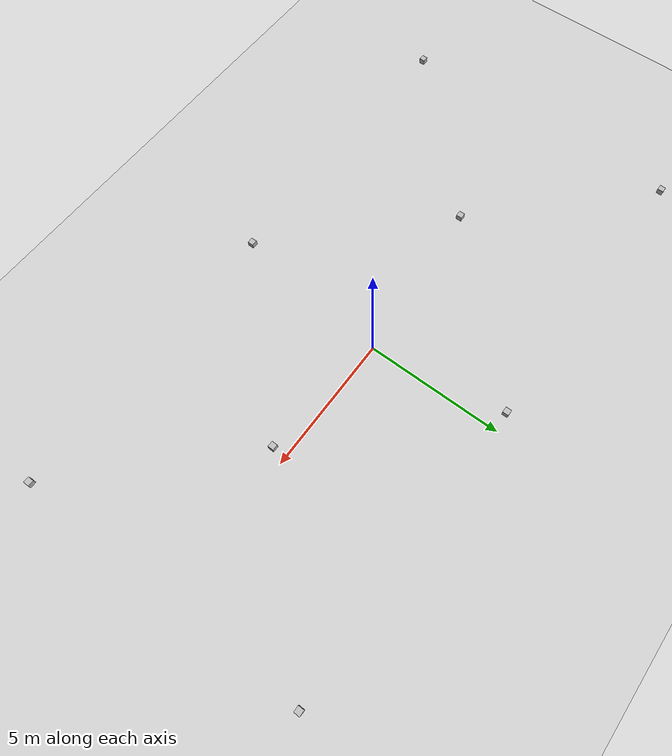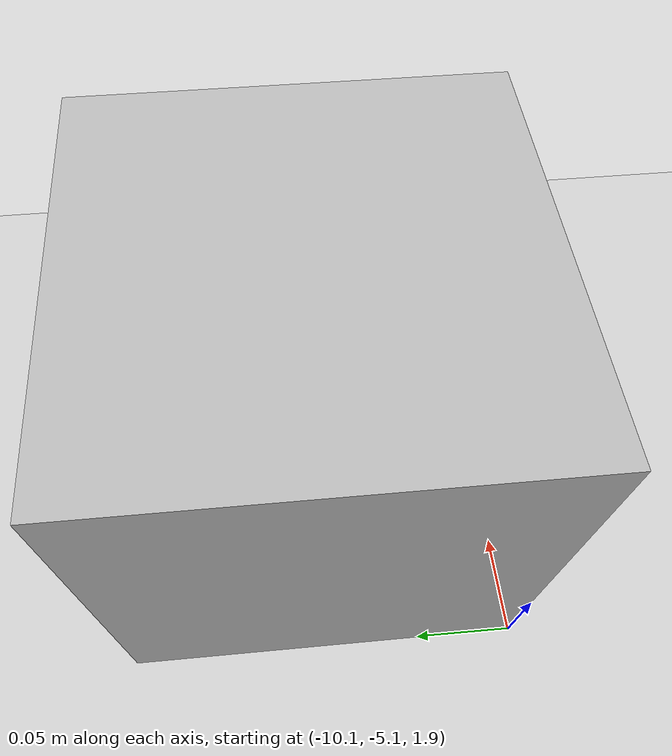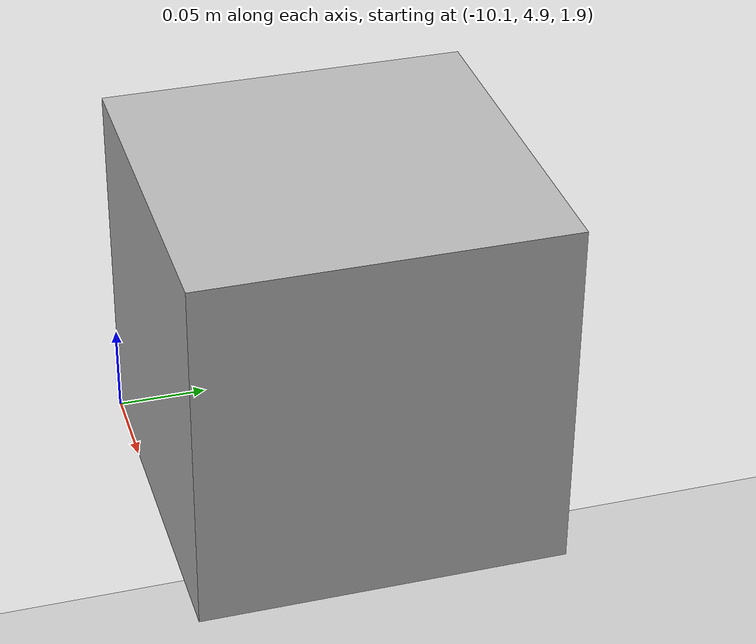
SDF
<?xml version="1.0" ?>
<sdf version="1.5">
  <world name="default">
    <!-- A global light source -->
    <include>
      <uri>model://sun</uri>
    </include>
    <!-- A ground plane -->
    <include>
      <uri>model://ground_plane</uri>
    </include>
    <include>
      <uri>model://uwb_anchor0</uri>
    </include>
    <include>
      <uri>model://uwb_anchor1</uri>
    </include>
    <include>
      <uri>model://uwb_anchor2</uri>
    </include>
    <include>
      <uri>model://uwb_anchor3</uri>
    </include>
    <include>
      <uri>model://uwb_anchor4</uri>
    </include>
    <include>
      <uri>model://uwb_anchor5</uri>
    </include>
    <include>
      <uri>model://uwb_anchor6</uri>
    </include>
    <include>
      <uri>model://uwb_anchor7</uri>
    </include>
 </world>
</sdf>

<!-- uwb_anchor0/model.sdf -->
<sdf version="1.4">
  <model name="uwb_anchor0">
      <pose>-10 5 2 0 0 0</pose>
      <static>1</static>
      <link name="link">
        <visual name="visual">
          <geometry>
            <box>
              <size>0.2 0.2 0.2</size>
            </box>
          </geometry>
        </visual>
      </link>
    </model>
</sdf>

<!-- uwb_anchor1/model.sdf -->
<sdf version="1.4">
  <model name="uwb_anchor1">
      <pose>0 5 2 0 0 0</pose>
      <static>1</static>
      <link name="link">
        <visual name="visual">
          <geometry>
            <box>
              <size>0.2 0.2 0.2</size>
            </box>
          </geometry>
        </visual>
      </link>
    </model>
</sdf>

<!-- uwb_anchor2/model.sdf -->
<sdf version="1.4">
  <model name="uwb_anchor2">
      <pose>10 5 2 0 0 0</pose>
      <static>1</static>
      <link name="link">
        <visual name="visual">
          <geometry>
            <box>
              <size>0.2 0.2 0.2</size>
            </box>
          </geometry>
        </visual>
      </link>
    </model>
</sdf>

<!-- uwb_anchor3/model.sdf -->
<sdf version="1.4">
  <model name="uwb_anchor3">
      <pose>-10 -5 2 0 0 0</pose>
      <static>1</static>
      <link name="link">
        <visual name="visual">
          <geometry>
            <box>
              <size>0.2 0.2 0.2</size>
            </box>
          </geometry>
        </visual>
      </link>
    </model>
</sdf>

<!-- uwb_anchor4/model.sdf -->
<sdf version="1.4">
  <model name="uwb_anchor4">
      <pose>0 -5 2 0 0 0</pose>
      <static>1</static>
      <link name="link">
        <visual name="visual">
          <geometry>
            <box>
              <size>0.2 0.2 0.2</size>
            </box>
          </geometry>
        </visual>
      </link>
    </model>
</sdf>

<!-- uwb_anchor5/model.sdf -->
<sdf version="1.4">
  <model name="uwb_anchor5">
      <pose>10 -5 2 0 0 0</pose>
      <static>1</static>
      <link name="link">
        <visual name="visual">
          <geometry>
            <box>
              <size>0.2 0.2 0.2</size>
            </box>
          </geometry>
        </visual>
      </link>
    </model>
</sdf>

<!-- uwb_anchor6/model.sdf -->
<sdf version="1.4">
  <model name="uwb_anchor6">
      <pose>-5 0 2 0 0 0</pose>
      <static>1</static>
      <link name="link">
        <visual name="visual">
          <geometry>
            <box>
              <size>0.2 0.2 0.2</size>
            </box>
          </geometry>
        </visual>
      </link>
    </model>
</sdf>

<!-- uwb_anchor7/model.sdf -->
<sdf version="1.4">
  <model name="uwb_anchor7">
      <pose>5 0 2 0 0 0</pose>
      <static>1</static>
      <link name="link">
        <visual name="visual">
          <geometry>
            <box>
              <size>0.2 0.2 0.2</size>
            </box>
          </geometry>
        </visual>
      </link>
    </model>
</sdf>
